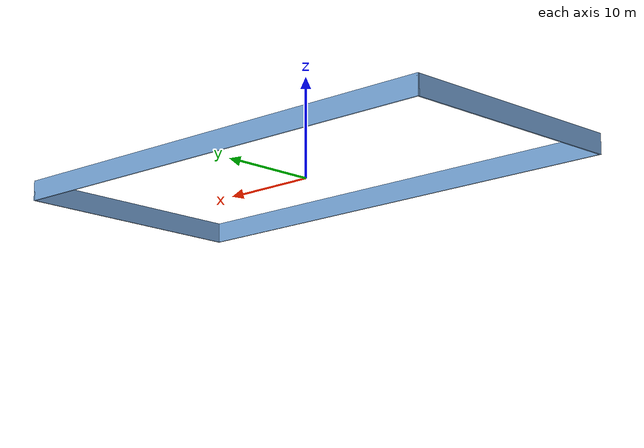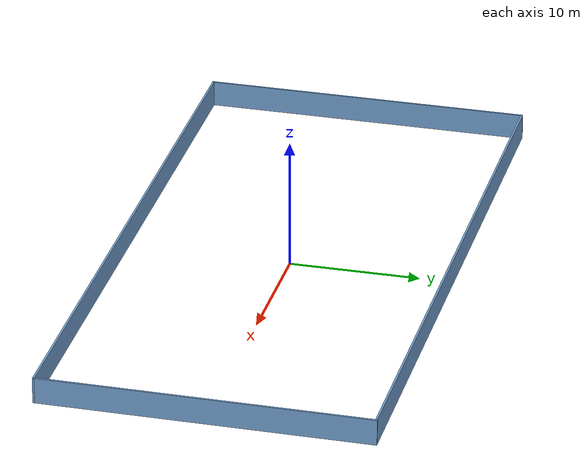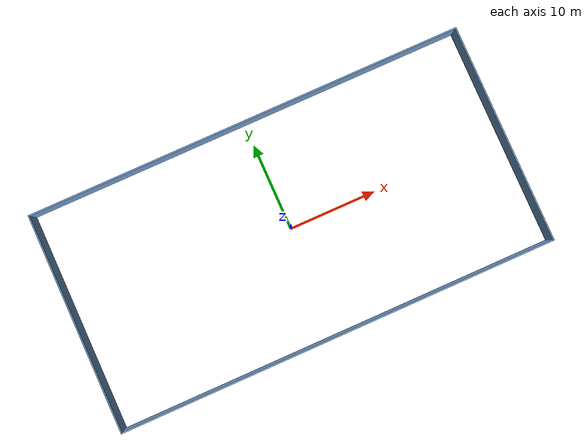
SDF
<?xml version='1.0'?>
<sdf version='1.7'>
  <model name='wall'>
    <pose>0 0 0 0 -0 0</pose>
    <link name='Wall_0'>
      <collision name='Wall_0_Collision'>
        <geometry>
          <box>
            <size>50.15 0.15 2</size>
          </box>
        </geometry>
        <pose>0 0 1 0 -0 0</pose>
      </collision>
      <visual name='Wall_0_Visual'>
        <pose>0 0 1 0 -0 0</pose>
        <geometry>
          <box>
            <size>50.15 0.15 2</size>
          </box>
        </geometry>
        <material>
          <script>
            <uri>file://media/materials/scripts/gazebo.material</uri>
            <name>Gazebo/Grey</name>
          </script>
          <ambient>0.447059 0.623529 0.811765 1</ambient>
        </material>
        <meta>
          <layer>0</layer>
        </meta>
      </visual>
      <pose>0 12.5 0 0 -0 0</pose>
    </link>
    <link name='Wall_2'>
      <collision name='Wall_2_Collision'>
        <geometry>
          <box>
            <size>25.15 0.15 2</size>
          </box>
        </geometry>
        <pose>0 0 1 0 -0 0</pose>
      </collision>
      <visual name='Wall_2_Visual'>
        <pose>0 0 1 0 -0 0</pose>
        <geometry>
          <box>
            <size>25.15 0.15 2</size>
          </box>
        </geometry>
        <material>
          <script>
            <uri>file://media/materials/scripts/gazebo.material</uri>
            <name>Gazebo/Grey</name>
          </script>
          <ambient>0.447059 0.623529 0.811765 1</ambient>
        </material>
        <meta>
          <layer>0</layer>
        </meta>
      </visual>
      <pose>-25 0 0 0 -0 -1.5708</pose>
    </link>
    <link name='Wall_4'>
      <collision name='Wall_4_Collision'>
        <geometry>
          <box>
            <size>25.15 0.15 2</size>
          </box>
        </geometry>
        <pose>0 0 1 0 -0 0</pose>
      </collision>
      <visual name='Wall_4_Visual'>
        <pose>0 0 1 0 -0 0</pose>
        <geometry>
          <box>
            <size>25.15 0.15 2</size>
          </box>
        </geometry>
        <material>
          <script>
            <uri>file://media/materials/scripts/gazebo.material</uri>
            <name>Gazebo/Grey</name>
          </script>
          <ambient>0.447059 0.623529 0.811765 1</ambient>
        </material>
        <meta>
          <layer>0</layer>
        </meta>
      </visual>
      <pose>25 0 0 0 -0 -1.5708</pose>
    </link>
    <link name='Wall_6'>
      <collision name='Wall_6_Collision'>
        <geometry>
          <box>
            <size>50.15 0.15 2</size>
          </box>
        </geometry>
        <pose>0 0 1 0 -0 0</pose>
      </collision>
      <visual name='Wall_6_Visual'>
        <pose>0 0 1 0 -0 0</pose>
        <geometry>
          <box>
            <size>50.15 0.15 2</size>
          </box>
        </geometry>
        <material>
          <script>
            <uri>file://media/materials/scripts/gazebo.material</uri>
            <name>Gazebo/Grey</name>
          </script>
          <ambient>0.447059 0.623529 0.811765 1</ambient>
        </material>
        <meta>
          <layer>0</layer>
        </meta>
      </visual>
      <pose>0 -12.5 0 0 -0 0</pose>
    </link>
    <static>1</static>
  </model>
</sdf>
